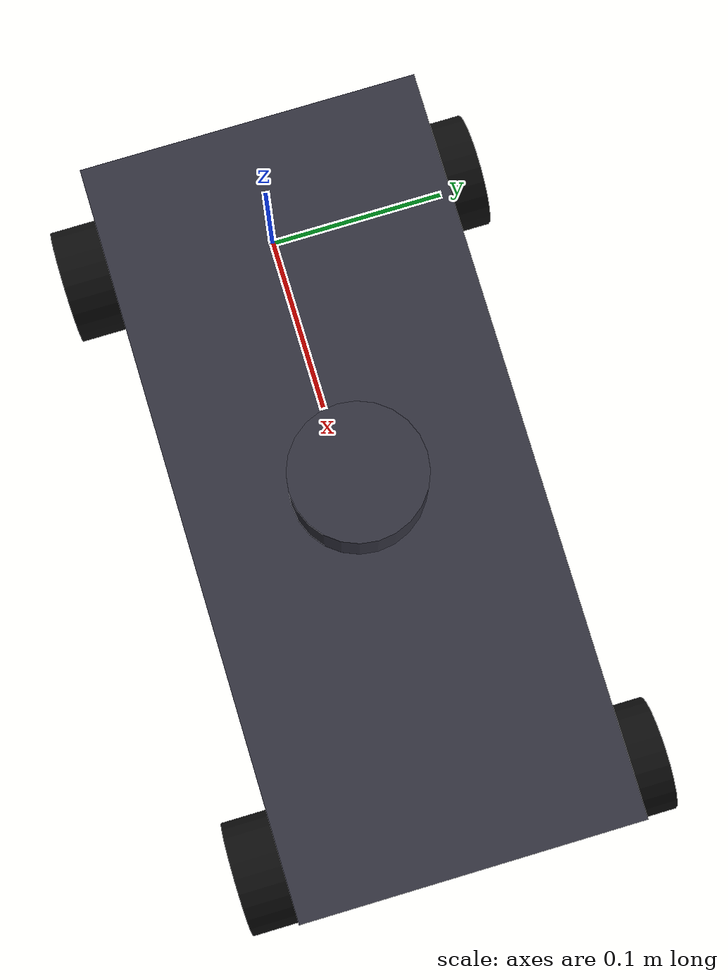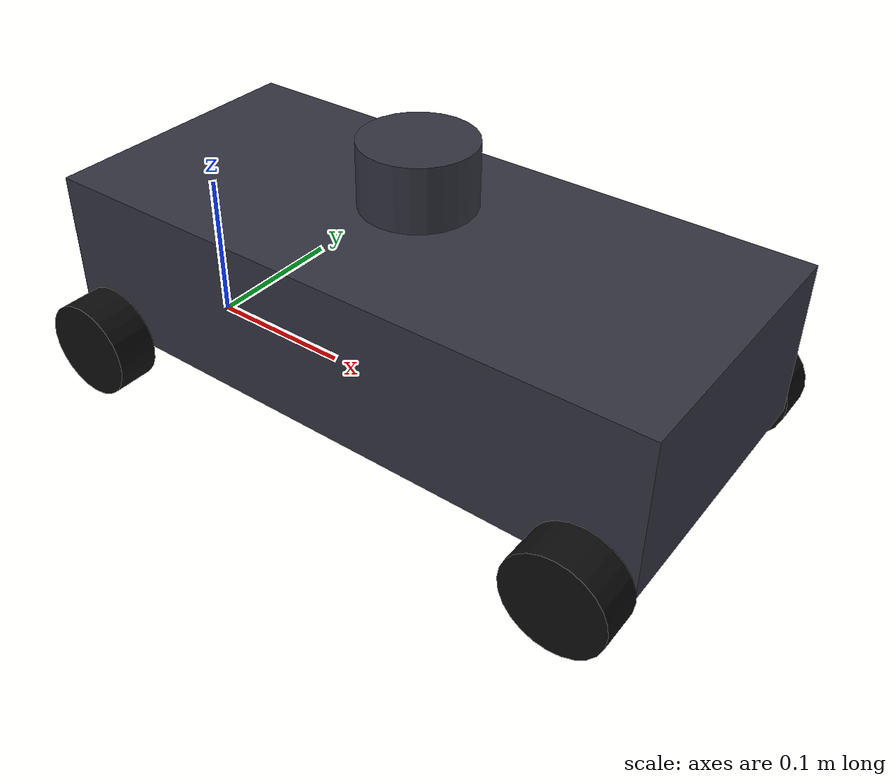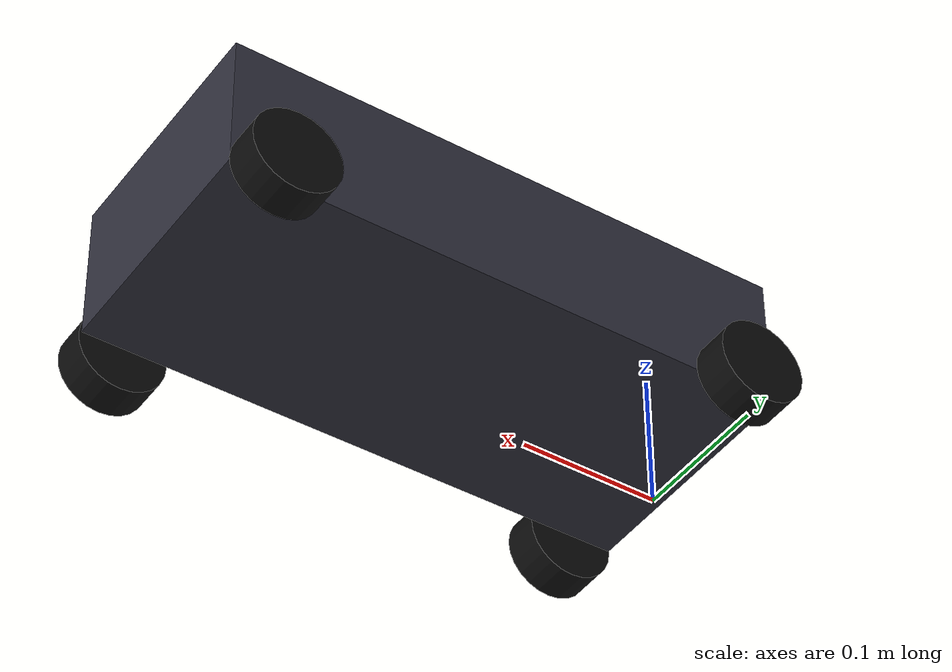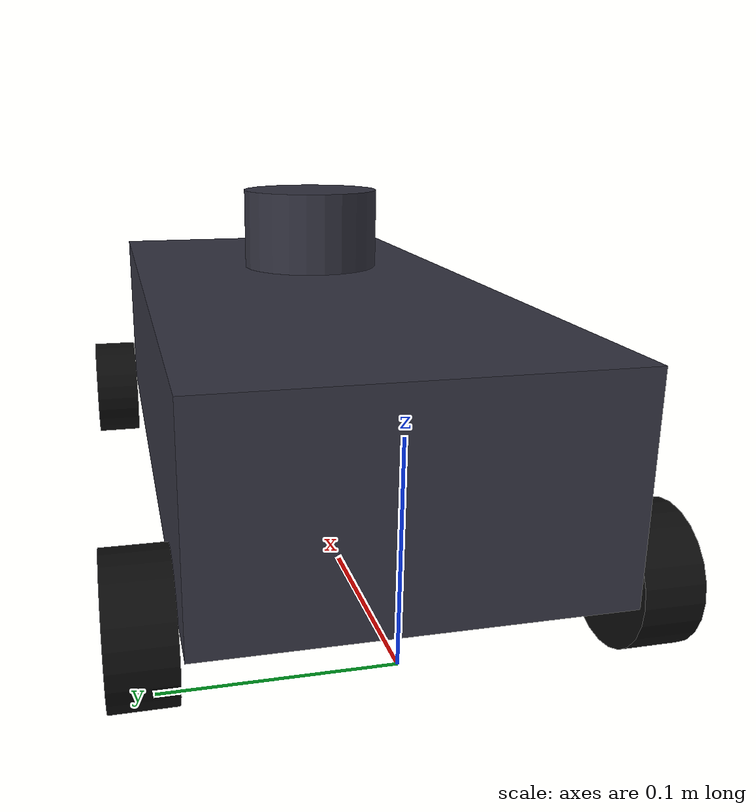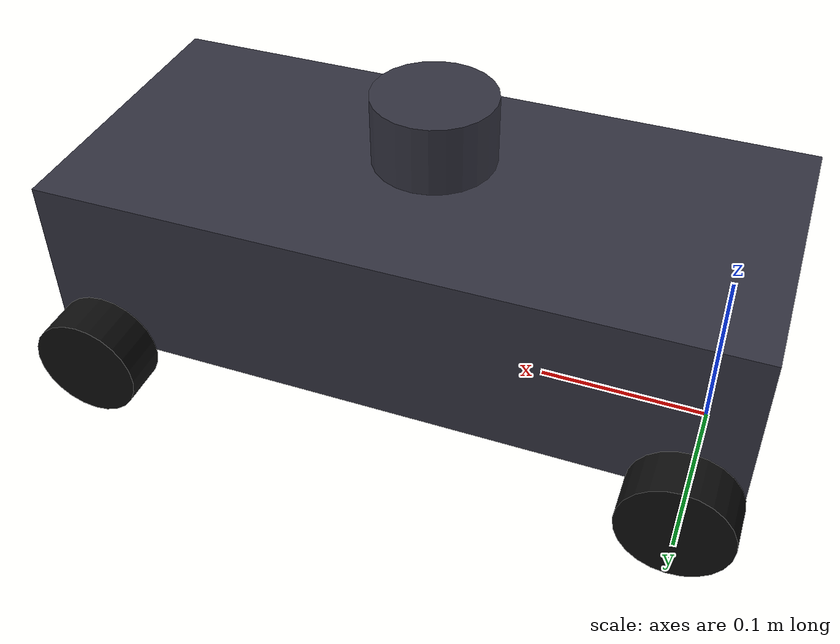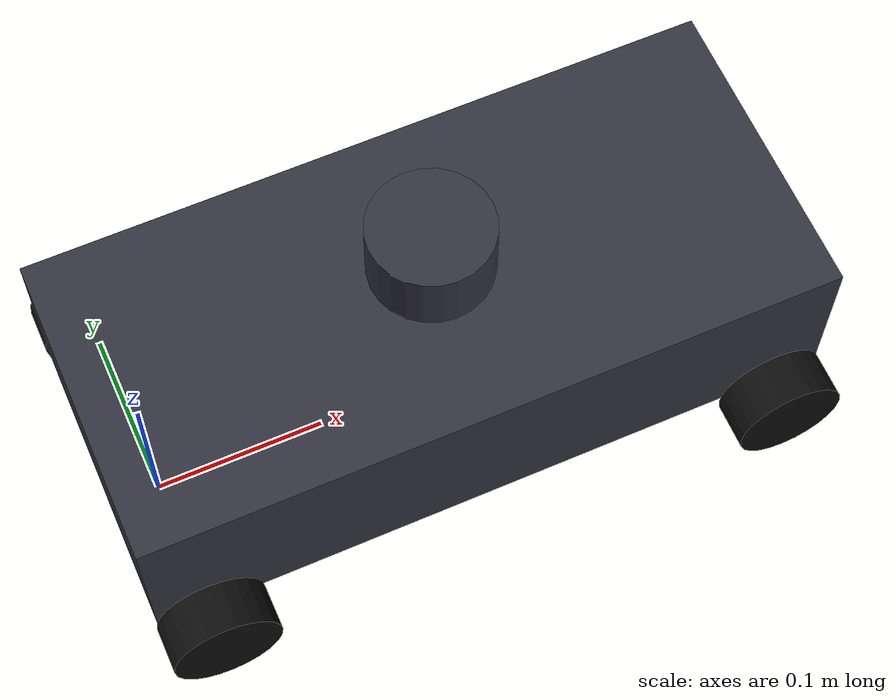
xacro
<?xml version="1.0"?>
<robot xmlns:xacro="http://www.ros.org/wiki/xacro" name="rc_car">

  <!-- ========== PARAMETRY GEOMETRII ========== -->
  <xacro:property name="base_length"  value="0.40"/>
  <xacro:property name="base_width"   value="0.18"/>
  <xacro:property name="base_height"  value="0.10"/>
  <xacro:property name="wheelbase"    value="0.34"/>
  <xacro:property name="track_width"  value="0.21"/>
  <xacro:property name="wheel_radius" value="0.03125"/>
  <xacro:property name="wheel_width"  value="0.027"/>

  <!-- Wysokosc srodka kol nad podlozem = promien kola -->
  <xacro:property name="wheel_z"      value="0.0"/>

  <!-- ========== MATERIALY ========== -->
  <material name="chassis_color">
    <color rgba="0.2 0.2 0.25 1.0"/>
  </material>
  <material name="wheel_color">
    <color rgba="0.05 0.05 0.05 1.0"/>
  </material>

  <!-- ========== MAKRO KOLA ========== -->
  <xacro:macro name="wheel" params="name x y">
    <link name="${name}">
      <visual>
        <origin xyz="0 0 0" rpy="1.5708 0 0"/>
        <geometry>
          <cylinder radius="${wheel_radius}" length="${wheel_width}"/>
        </geometry>
        <material name="wheel_color"/>
      </visual>
      <collision>
        <origin xyz="0 0 0" rpy="1.5708 0 0"/>
        <geometry>
          <cylinder radius="${wheel_radius}" length="${wheel_width}"/>
        </geometry>
      </collision>
      <inertial>
        <mass value="0.05"/>
        <inertia ixx="0.00002" ixy="0.0" ixz="0.0"
                 iyy="0.00002" iyz="0.0" izz="0.00003"/>
      </inertial>
    </link>

    <joint name="${name}_joint" type="continuous">
      <parent link="base_link"/>
      <child link="${name}"/>
      <origin xyz="${x} ${y} ${wheel_z}" rpy="0 0 0"/>
      <axis xyz="0 1 0"/>
    </joint>
  </xacro:macro>

  <!-- ========== BASE LINK (srodek tylnej osi) ========== -->
  <link name="base_link">
    <visual>
      <!-- nadwozie przesuniete do przodu wzgledem tylnej osi -->
      <origin xyz="${wheelbase/2} 0 ${base_height/2}" rpy="0 0 0"/>
      <geometry>
        <box size="${base_length} ${base_width} ${base_height}"/>
      </geometry>
      <material name="chassis_color"/>
    </visual>
    <collision>
      <origin xyz="${wheelbase/2} 0 ${base_height/2}" rpy="0 0 0"/>
      <geometry>
        <box size="${base_length} ${base_width} ${base_height}"/>
      </geometry>
    </collision>
    <inertial>
      <origin xyz="${wheelbase/2} 0 ${base_height/2}" rpy="0 0 0"/>
      <mass value="2.0"/>
      <inertia ixx="0.01" ixy="0.0" ixz="0.0"
               iyy="0.02" iyz="0.0" izz="0.02"/>
    </inertial>
  </link>

  <!-- base_footprint na poziomie podlogi -->
  <link name="base_footprint"/>
  <joint name="base_footprint_joint" type="fixed">
    <parent link="base_footprint"/>
    <child link="base_link"/>
    <origin xyz="0 0 ${wheel_radius}" rpy="0 0 0"/>
  </joint>

  <!-- ========== KOLA ========== -->
  <!-- Tylne (napedowe) - na osi base_link -->
  <xacro:wheel name="rear_left_wheel"  x="0" y="${track_width/2}"/>
  <xacro:wheel name="rear_right_wheel" x="0" y="${-track_width/2}"/>

  <!-- Przednie (skretne) - przesuniete o wheelbase do przodu -->
  <xacro:wheel name="front_left_wheel"  x="${wheelbase}" y="${track_width/2}"/>
  <xacro:wheel name="front_right_wheel" x="${wheelbase}" y="${-track_width/2}"/>

  <!-- ========== LiDAR ========== -->
  <link name="laser">
    <visual>
      <geometry>
        <cylinder radius="0.035" length="0.04"/>
      </geometry>
      <material name="chassis_color"/>
    </visual>
  </link>
  <joint name="laser_joint" type="fixed">
    <parent link="base_link"/>
    <child link="laser"/>
    <!-- LiDAR na srodku pojazdu, na dachu -->
    <origin xyz="${wheelbase/2} 0 ${base_height + 0.03}" rpy="0 0 0"/>
  </joint>

</robot>
